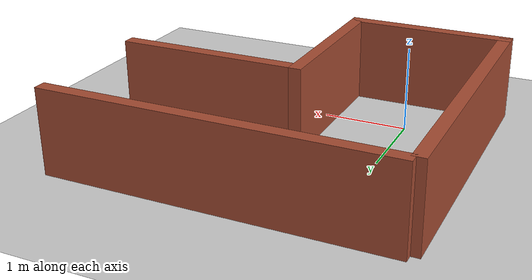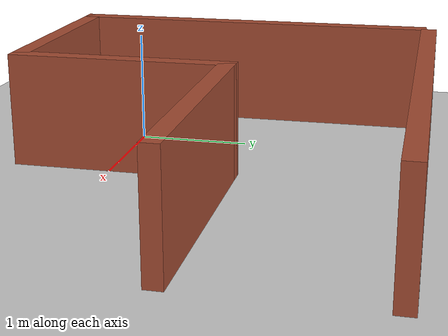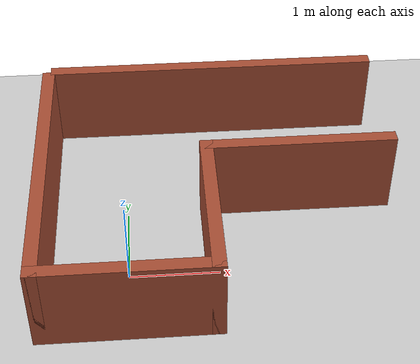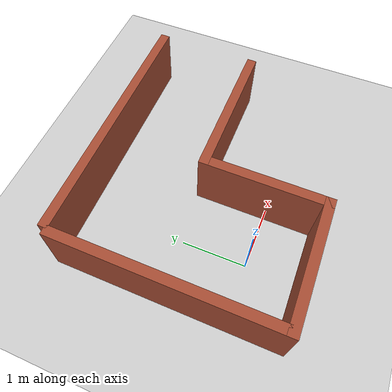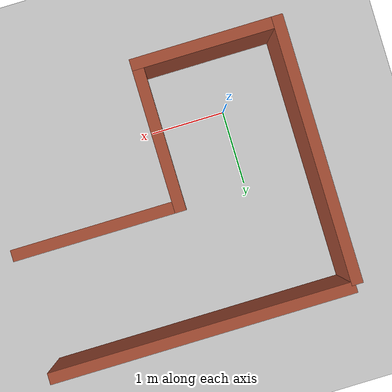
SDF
<sdf version="1.6">
 <world name="default">
  <light name="sun" type="directional">
   <pose>0 0 10 0 -0 0</pose>
   <diffuse>0.8 0.8 0.8 1</diffuse>
   <specular>0.2 0.2 0.2 1</specular>
   <attenuation>
    <range>1000</range>
    <constant>0.9</constant>
    <linear>0.01</linear>
    <quadratic>0.001</quadratic>
   </attenuation>
   <direction>-0.5 0.1 -0.9</direction>
  </light>
  <model name="ground_plane">
   <static>1</static>
   <link name="link">
    <collision name="collision">
     <geometry><plane><normal>0 0 1</normal><size>100 100</size></plane></geometry>
     <surface>
      <contact><collide_bitmask>65535</collide_bitmask></contact>
      <friction><ode><mu>100</mu><mu2>50</mu2></ode></friction>
     </surface>
    </collision>
    <visual name="visual">
     <cast_shadows>0</cast_shadows>
     <geometry><plane><normal>0 0 1</normal><size>100 100</size></plane></geometry>
     <material>
      <script><uri>file://media/materials/scripts/gazebo.material</uri><name>Gazebo/Grey</name></script>
     </material>
    </visual>
   </link>
  </model>
  <gravity>0 0 -9.8</gravity>
  <magnetic_field>6e-06 2.3e-05 -4.2e-05</magnetic_field>
  <atmosphere type="adiabatic"/>
  <physics name="default_physics" default="0" type="ode">
   <max_step_size>0.001</max_step_size>
   <real_time_factor>1</real_time_factor>
   <real_time_update_rate>1000</real_time_update_rate>
  </physics>
  <scene><ambient>0.4 0.4 0.4 1</ambient><background>0.7 0.7 0.7 1</background><shadows>1</shadows></scene>
  <audio><device>default</device></audio>
  <spherical_coordinates>
   <surface_model>EARTH_WGS84</surface_model>
   <latitude_deg>0</latitude_deg>
   <longitude_deg>0</longitude_deg>
   <elevation>0</elevation>
   <heading_deg>0</heading_deg>
  </spherical_coordinates>
  <model name="wall_right_angle">
   <pose>1.05308 0.917397 0 0 -0 0</pose>
   <link name="Wall_39">
    <collision name="Wall_39_Collision">
     <geometry><box><size>3.5 0.15 1</size></box></geometry>
     <pose>0 0 0.5 0 -0 0</pose>
    </collision>
    <visual name="Wall_39_Visual">
     <pose>0 0 0.5 0 -0 0</pose>
     <geometry><box><size>3.5 0.15 1</size></box></geometry>
     <material>
      <script><uri>file://media/materials/scripts/gazebo.material</uri><name>Gazebo/Bricks</name></script>
      <ambient>1 1 1 1</ambient>
     </material>
     <meta><layer>0</layer></meta>
    </visual>
    <pose>-1.975 -0.05 0 0 -0 -1.5708</pose>
   </link>
   <link name="Wall_40">
    <collision name="Wall_40_Collision">
     <geometry><box><size>2 0.15 1</size></box></geometry>
     <pose>0 0 0.5 0 -0 0</pose>
    </collision>
    <visual name="Wall_40_Visual">
     <pose>0 0 0.5 0 -0 0</pose>
     <geometry><box><size>2 0.15 1</size></box></geometry>
     <material>
      <script><uri>file://media/materials/scripts/gazebo.material</uri><name>Gazebo/Bricks</name></script>
      <ambient>1 1 1 1</ambient>
     </material>
     <meta><layer>0</layer></meta>
    </visual>
    <pose>-1.05 -1.725 0 0 -0 0</pose>
   </link>
   <link name="Wall_41">
    <collision name="Wall_41_Collision">
     <geometry><box><size>2 0.15 1</size></box></geometry>
     <pose>0 0 0.5 0 -0 0</pose>
    </collision>
    <visual name="Wall_41_Visual">
     <pose>0 0 0.5 0 -0 0</pose>
     <geometry><box><size>2 0.15 1</size></box></geometry>
     <material>
      <script><uri>file://media/materials/scripts/gazebo.material</uri><name>Gazebo/Bricks</name></script>
      <ambient>1 1 1 1</ambient>
     </material>
     <meta><layer>0</layer></meta>
    </visual>
    <pose>-0.125 -0.8 0 0 -0 1.5708</pose>
   </link>
   <link name="Wall_42">
    <collision name="Wall_42_Collision">
     <geometry><box><size>2.25 0.15 1</size></box></geometry>
     <pose>0 0 0.5 0 -0 0</pose>
    </collision>
    <visual name="Wall_42_Visual">
     <pose>0 0 0.5 0 -0 0</pose>
     <geometry><box><size>2.25 0.15 1</size></box></geometry>
     <material>
      <script><uri>file://media/materials/scripts/gazebo.material</uri><name>Gazebo/Bricks</name></script>
      <ambient>1 1 1 1</ambient>
     </material>
     <meta><layer>0</layer></meta>
    </visual>
    <pose>0.925 0.125 0 0 -0 0</pose>
   </link>
   <link name="Wall_44">
    <collision name="Wall_44_Collision">
     <geometry><box><size>4 0.15 1</size></box></geometry>
     <pose>0 0 0.5 0 -0 0</pose>
    </collision>
    <visual name="Wall_44_Visual">
     <pose>0 0 0.5 0 -0 0</pose>
     <geometry><box><size>4 0.15 1</size></box></geometry>
     <material>
      <script><uri>file://media/materials/scripts/gazebo.material</uri><name>Gazebo/Bricks</name></script>
      <ambient>1 1 1 1</ambient>
     </material>
     <meta><layer>0</layer></meta>
    </visual>
    <pose>0.05 1.725 0 0 -0 3.14159</pose>
   </link>
   <static>1</static>
  </model>
 </world>
</sdf>
